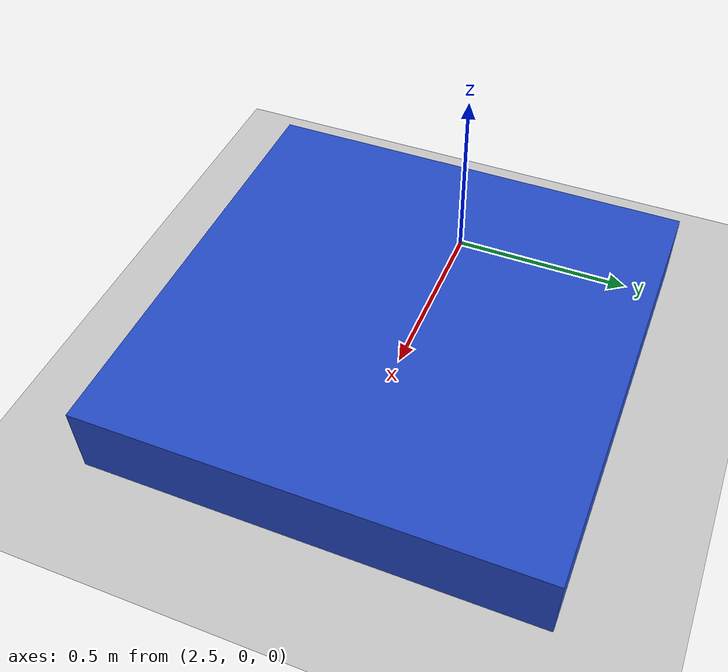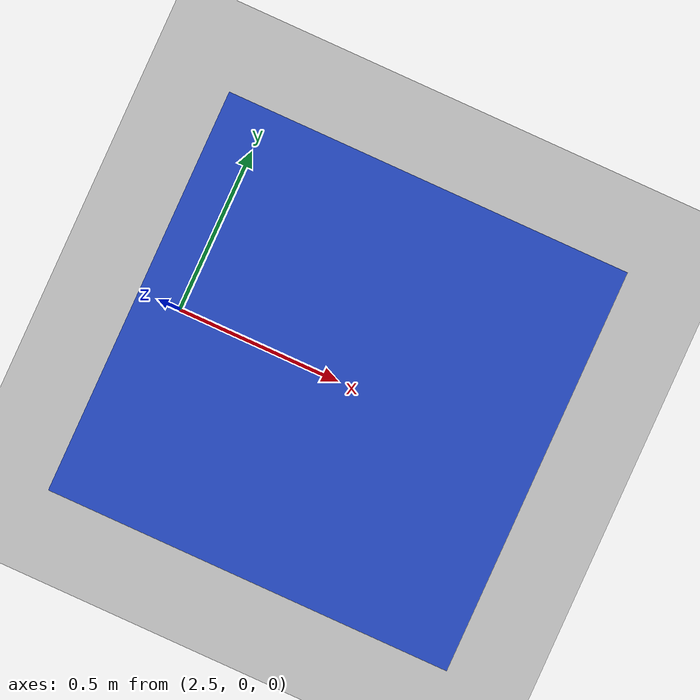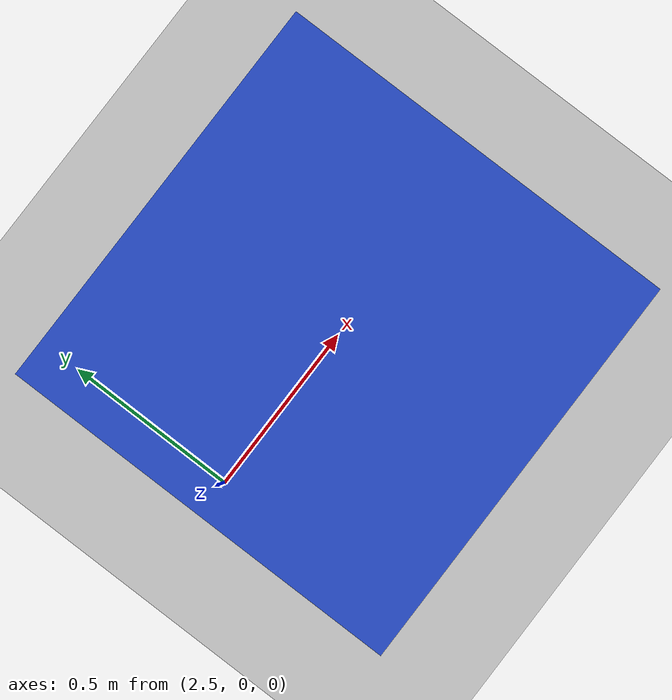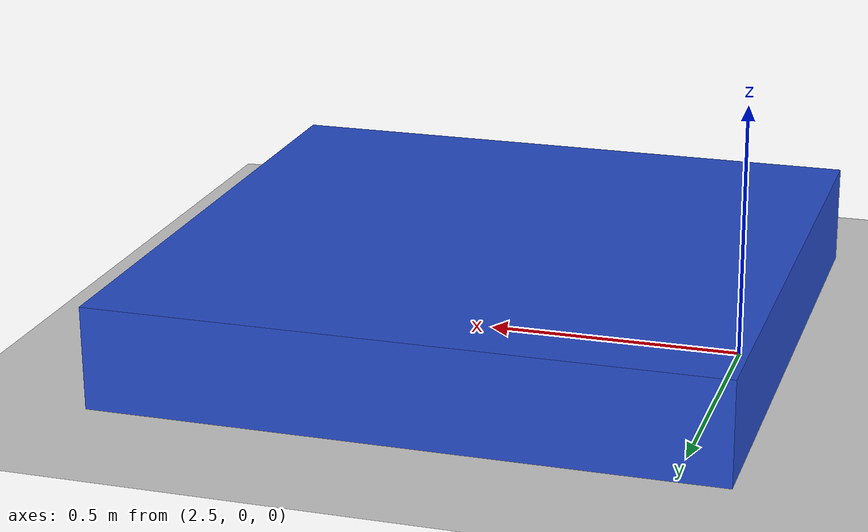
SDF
<?xml version="1.0" ?>
<sdf version="1.6">
  <world name="block_world">  <!-- 世界名称 -->

    <!-- 物理引擎配置（默认即可） -->
    <physics name="default_physics" type="ode">
      <max_step_size>0.001</max_step_size>
      <real_time_factor>1</real_time_factor>
      <real_time_update_rate>1000</real_time_update_rate>
    </physics>

    <!-- 光照（默认太阳光照） -->
    <light name="sun" type="directional">
      <pose>0 0 10 0 0 0</pose>
      <diffuse>0.8 0.8 0.8 1</diffuse>
      <specular>0.2 0.2 0.2 1</specular>
      <direction>-0.5 0.5 -1</direction>
    </light>

    <!-- 地面（可选：如果需要可见地面，可添加；不添加则默认是灰色网格地面） -->
    <model name="ground_plane">
      <static>true</static>
      <link name="link">
        <collision name="collision">
          <geometry>
            <plane>
              <normal>0 0 1</normal>
              <size>100 100</size>
            </plane>
          </geometry>
        </collision>
        <visual name="visual">
          <geometry>
            <plane>
              <normal>0 0 1</normal>
              <size>100 100</size>
            </plane>
          </geometry>
          <material>
            <script>
              <uri>file://media/materials/scripts/gazebo.material</uri>
              <name>Gazebo/Gray</name>
            </script>
          </material>
        </visual>
      </link>
    </model>

    <!-- 核心：1.2m×1.2m×0.2m的方块模型（直接嵌入世界文件） -->
    <model name="target_block">
      <static>true</static>  <!-- 静态模型，不被物理引擎推动 -->

      <link name="block_link">
        <!-- 位置：x=3, y=0, z=0.1（方块高0.2m，中心在z=0.1，底部刚好贴地） -->
        <pose>3 0 0.1 0 0 0</pose>

        <!-- 视觉外观 -->
        <visual name="block_visual">
          <geometry>
            <box>
              <size>1.2 1.2 0.2</size>
            </box>
          </geometry>
          <material>
            <script>
              <uri>file://media/materials/scripts/gazebo.material</uri>
              <name>Gray/Blue</name>  <!-- 蓝色方块 -->
            </script>
          </material>
        </visual>

        <!-- 碰撞体（与视觉体尺寸一致，确保物理检测有效） -->
        <collision name="block_collision">
          <geometry>
            <box>
              <size>1.2 1.2 0.2</size>
            </box>
          </geometry>
        </collision>
      </link>
    </model>

  </world>
</sdf>
